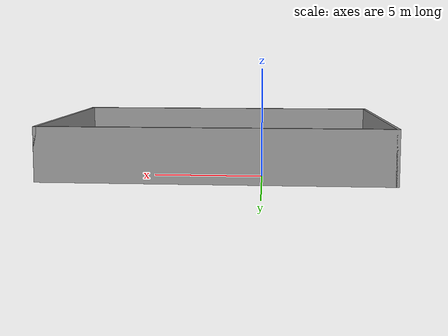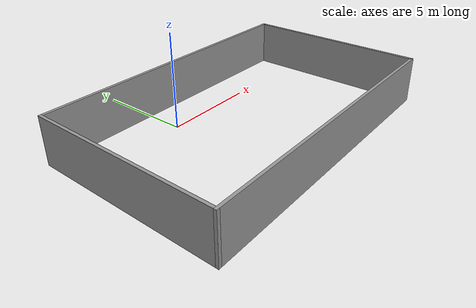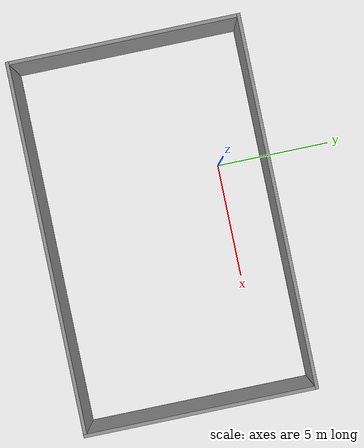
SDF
<?xml version='1.0'?>
<sdf version='1.7'>
  <model name='Greenhouse_walls'>
    <pose>2.10547 -2.92975 0 0 -0 0</pose>
    <link name='Wall_0'>
      <collision name='Wall_0_Collision'>
        <geometry>
          <box>
            <size>16 0.15 2.5</size>
          </box>
        </geometry>
        <pose>0 0 1.25 0 -0 0</pose>
      </collision>
      <visual name='Wall_0_Visual'>
        <pose>0 0 1.25 0 -0 0</pose>
        <geometry>
          <box>
            <size>16 0.15 2.5</size>
          </box>
        </geometry>
        <material>
          <script>
            <uri>file://media/materials/scripts/gazebo.material</uri>
            <name>Gazebo/Grey</name>
          </script>
          <ambient>1 1 1 1</ambient>
        </material>
        <meta>
          <layer>0</layer>
        </meta>
      </visual>
      <pose>0 4.925 0 0 -0 0</pose>
    </link>
    <link name='Wall_2'>
      <collision name='Wall_2_Collision'>
        <geometry>
          <box>
            <size>10 0.15 2.5</size>
          </box>
        </geometry>
        <pose>0 0 1.25 0 -0 0</pose>
      </collision>
      <visual name='Wall_2_Visual'>
        <pose>0 0 1.25 0 -0 0</pose>
        <geometry>
          <box>
            <size>10 0.15 2.5</size>
          </box>
        </geometry>
        <material>
          <script>
            <uri>file://media/materials/scripts/gazebo.material</uri>
            <name>Gazebo/Grey</name>
          </script>
          <ambient>1 1 1 1</ambient>
        </material>
        <meta>
          <layer>0</layer>
        </meta>
      </visual>
      <pose>7.925 -0 0 0 -0 -1.5708</pose>
    </link>
    <link name='Wall_3'>
      <collision name='Wall_3_Collision'>
        <geometry>
          <box>
            <size>16 0.15 2.5</size>
          </box>
        </geometry>
        <pose>0 0 1.25 0 -0 0</pose>
      </collision>
      <visual name='Wall_3_Visual'>
        <pose>0 0 1.25 0 -0 0</pose>
        <geometry>
          <box>
            <size>16 0.15 2.5</size>
          </box>
        </geometry>
        <material>
          <script>
            <uri>file://media/materials/scripts/gazebo.material</uri>
            <name>Gazebo/Grey</name>
          </script>
          <ambient>1 1 1 1</ambient>
        </material>
        <meta>
          <layer>0</layer>
        </meta>
      </visual>
      <pose>0 -4.925 0 0 -0 3.14159</pose>
    </link>
    <link name='Wall_4'>
      <collision name='Wall_4_Collision'>
        <geometry>
          <box>
            <size>10 0.15 2.5</size>
          </box>
        </geometry>
        <pose>0 0 1.25 0 -0 0</pose>
      </collision>
      <visual name='Wall_4_Visual'>
        <pose>0 0 1.25 0 -0 0</pose>
        <geometry>
          <box>
            <size>10 0.15 2.5</size>
          </box>
        </geometry>
        <material>
          <script>
            <uri>file://media/materials/scripts/gazebo.material</uri>
            <name>Gazebo/Grey</name>
          </script>
          <ambient>1 1 1 1</ambient>
        </material>
        <meta>
          <layer>0</layer>
        </meta>
      </visual>
      <pose>-7.925 -0 0 0 -0 1.5708</pose>
    </link>
    <static>1</static>
  </model>
</sdf>
